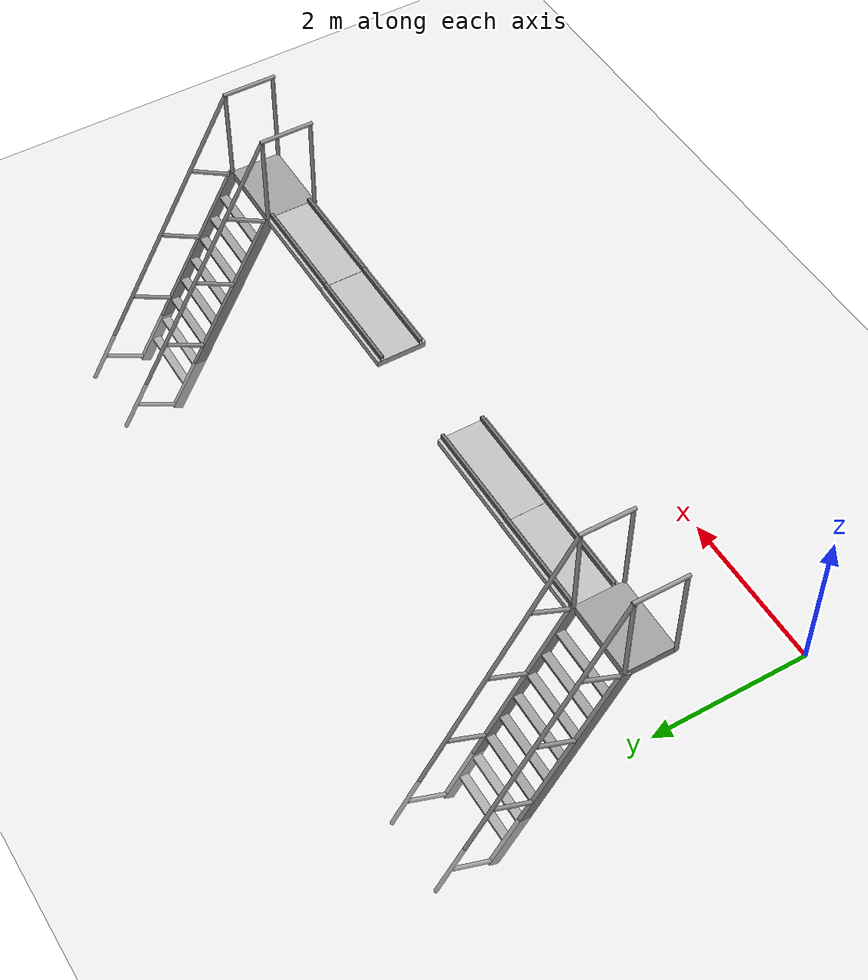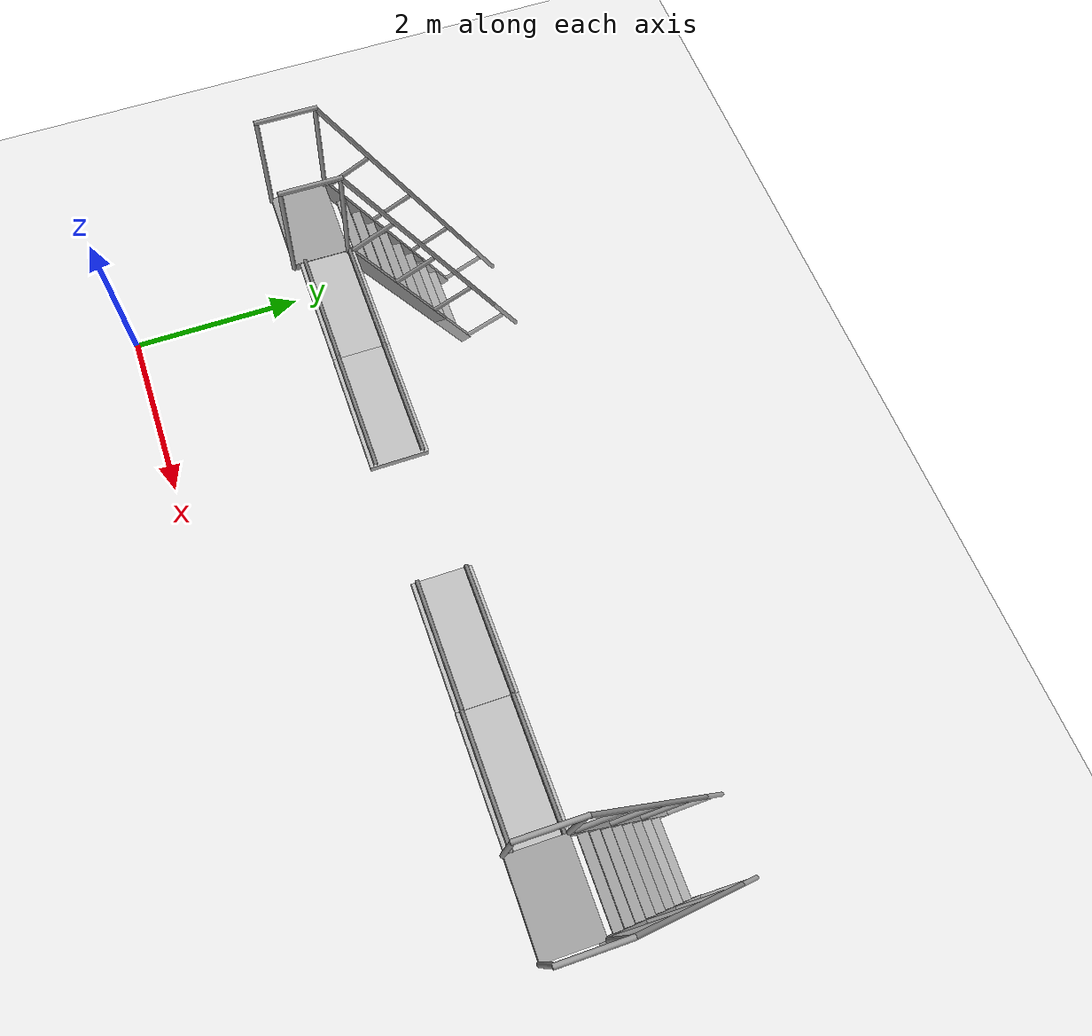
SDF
<sdf version="1.6">
 <world name="default">
  <model name="ground_plane">
   <static>1</static>
   <link name="link">
    <collision name="collision">
     <geometry><plane><normal>0 0 1</normal><size>100 100</size></plane></geometry>
     <surface>
      <contact><collide_bitmask>65535</collide_bitmask></contact>
      <friction><ode><mu>100</mu><mu2>50</mu2></ode></friction>
     </surface>
    </collision>
    <visual name="visual">
     <cast_shadows>0</cast_shadows>
     <geometry><plane><normal>0 0 1</normal><size>100 100</size></plane></geometry>
     <material>
      <script><uri>file://media/materials/scripts/gazebo.material</uri><name>Gazebo/Grey</name></script>
     </material>
    </visual>
   </link>
  </model>
  <model name="ladder_60deg_2rails_clone">
   <static>1</static>
   <link name="step0">
    <pose>0 0.15396 0.266667 0 -0 0</pose>
    <inertial>
     <mass>9.75482</mass>
     <inertia>
      <ixx>0.00957124</ixx>
      <iyy>0.65963</iyy>
      <izz>0.666842</izz>
      <ixy>0</ixy>
      <ixz>0</ixz>
      <iyz>0</iyz>
     </inertia>
    </inertial>
    <collision name="collision"><geometry><box><size>0.9 0.1016 0.0381</size></box></geometry></collision>
    <visual name="visual">
     <geometry><box><size>0.9 0.1016 0.0381</size></box></geometry>
     <material>
      <script><uri>file://media/materials/scripts/gazebo.material</uri><name>Gazebo/Grey</name></script>
     </material>
    </visual>
   </link>
   <link name="step1">
    <pose>0 0.30792 0.533333 0 -0 0</pose>
    <inertial>
     <mass>9.75482</mass>
     <inertia>
      <ixx>0.00957124</ixx>
      <iyy>0.65963</iyy>
      <izz>0.666842</izz>
      <ixy>0</ixy>
      <ixz>0</ixz>
      <iyz>0</iyz>
     </inertia>
    </inertial>
    <collision name="collision"><geometry><box><size>0.9 0.1016 0.0381</size></box></geometry></collision>
    <visual name="visual">
     <geometry><box><size>0.9 0.1016 0.0381</size></box></geometry>
     <material>
      <script><uri>file://media/materials/scripts/gazebo.material</uri><name>Gazebo/Grey</name></script>
     </material>
    </visual>
   </link>
   <link name="step2">
    <pose>0 0.46188 0.8 0 -0 0</pose>
    <inertial>
     <mass>9.75482</mass>
     <inertia>
      <ixx>0.00957124</ixx>
      <iyy>0.65963</iyy>
      <izz>0.666842</izz>
      <ixy>0</ixy>
      <ixz>0</ixz>
      <iyz>0</iyz>
     </inertia>
    </inertial>
    <collision name="collision"><geometry><box><size>0.9 0.1016 0.0381</size></box></geometry></collision>
    <visual name="visual">
     <geometry><box><size>0.9 0.1016 0.0381</size></box></geometry>
     <material>
      <script><uri>file://media/materials/scripts/gazebo.material</uri><name>Gazebo/Grey</name></script>
     </material>
    </visual>
   </link>
   <link name="step3">
    <pose>0 0.61584 1.06667 0 -0 0</pose>
    <inertial>
     <mass>9.75482</mass>
     <inertia>
      <ixx>0.00957124</ixx>
      <iyy>0.65963</iyy>
      <izz>0.666842</izz>
      <ixy>0</ixy>
      <ixz>0</ixz>
      <iyz>0</iyz>
     </inertia>
    </inertial>
    <collision name="collision"><geometry><box><size>0.9 0.1016 0.0381</size></box></geometry></collision>
    <visual name="visual">
     <geometry><box><size>0.9 0.1016 0.0381</size></box></geometry>
     <material>
      <script><uri>file://media/materials/scripts/gazebo.material</uri><name>Gazebo/Grey</name></script>
     </material>
    </visual>
   </link>
   <link name="step4">
    <pose>0 0.7698 1.33333 0 -0 0</pose>
    <inertial>
     <mass>9.75482</mass>
     <inertia>
      <ixx>0.00957124</ixx>
      <iyy>0.65963</iyy>
      <izz>0.666842</izz>
      <ixy>0</ixy>
      <ixz>0</ixz>
      <iyz>0</iyz>
     </inertia>
    </inertial>
    <collision name="collision"><geometry><box><size>0.9 0.1016 0.0381</size></box></geometry></collision>
    <visual name="visual">
     <geometry><box><size>0.9 0.1016 0.0381</size></box></geometry>
     <material>
      <script><uri>file://media/materials/scripts/gazebo.material</uri><name>Gazebo/Grey</name></script>
     </material>
    </visual>
   </link>
   <link name="step5">
    <pose>0 0.92376 1.6 0 -0 0</pose>
    <inertial>
     <mass>9.75482</mass>
     <inertia>
      <ixx>0.00957124</ixx>
      <iyy>0.65963</iyy>
      <izz>0.666842</izz>
      <ixy>0</ixy>
      <ixz>0</ixz>
      <iyz>0</iyz>
     </inertia>
    </inertial>
    <collision name="collision"><geometry><box><size>0.9 0.1016 0.0381</size></box></geometry></collision>
    <visual name="visual">
     <geometry><box><size>0.9 0.1016 0.0381</size></box></geometry>
     <material>
      <script><uri>file://media/materials/scripts/gazebo.material</uri><name>Gazebo/Grey</name></script>
     </material>
    </visual>
   </link>
   <link name="step6">
    <pose>0 1.07772 1.86667 0 -0 0</pose>
    <inertial>
     <mass>9.75482</mass>
     <inertia>
      <ixx>0.00957124</ixx>
      <iyy>0.65963</iyy>
      <izz>0.666842</izz>
      <ixy>0</ixy>
      <ixz>0</ixz>
      <iyz>0</iyz>
     </inertia>
    </inertial>
    <collision name="collision"><geometry><box><size>0.9 0.1016 0.0381</size></box></geometry></collision>
    <visual name="visual">
     <geometry><box><size>0.9 0.1016 0.0381</size></box></geometry>
     <material>
      <script><uri>file://media/materials/scripts/gazebo.material</uri><name>Gazebo/Grey</name></script>
     </material>
    </visual>
   </link>
   <link name="step7">
    <pose>0 1.23168 2.13333 0 -0 0</pose>
    <inertial>
     <mass>9.75482</mass>
     <inertia>
      <ixx>0.00957124</ixx>
      <iyy>0.65963</iyy>
      <izz>0.666842</izz>
      <ixy>0</ixy>
      <ixz>0</ixz>
      <iyz>0</iyz>
     </inertia>
    </inertial>
    <collision name="collision"><geometry><box><size>0.9 0.1016 0.0381</size></box></geometry></collision>
    <visual name="visual">
     <geometry><box><size>0.9 0.1016 0.0381</size></box></geometry>
     <material>
      <script><uri>file://media/materials/scripts/gazebo.material</uri><name>Gazebo/Grey</name></script>
     </material>
    </visual>
   </link>
   <link name="landing">
    <pose>0 1.68564 2.4 0 -0 0</pose>
    <inertial>
     <mass>57.6072</mass>
     <inertia><ixx>1.73518</ixx><iyy>3.89545</iyy><izz>5.6167</izz><ixy>0</ixy><ixz>0</ixz><iyz>0</iyz></inertia>
    </inertial>
    <collision name="collision"><geometry><box><size>0.9 0.6 0.1016</size></box></geometry></collision>
    <visual name="visual">
     <geometry><box><size>0.9 0.6 0.1016</size></box></geometry>
     <material>
      <script><uri>file://media/materials/scripts/gazebo.material</uri><name>Gazebo/Grey</name></script>
     </material>
    </visual>
   </link>
   <link name="left_side_wall">
    <pose>-0.45 0.69282 1.2 1.0472 -0 0</pose>
    <collision name="collision"><geometry><box><size>0.0508 2.85128 0.13</size></box></geometry></collision>
    <visual name="visual">
     <geometry><box><size>0.0508 2.85128 0.13</size></box></geometry>
     <material>
      <script><uri>file://media/materials/scripts/gazebo.material</uri><name>Gazebo/Grey</name></script>
     </material>
    </visual>
   </link>
   <link name="right_side_wall">
    <pose>0.45 0.69282 1.2 1.0472 -0 0</pose>
    <collision name="collision"><geometry><box><size>0.0508 2.85128 0.13</size></box></geometry></collision>
    <visual name="visual">
     <geometry><box><size>0.0508 2.85128 0.13</size></box></geometry>
     <material>
      <script><uri>file://media/materials/scripts/gazebo.material</uri><name>Gazebo/Grey</name></script>
     </material>
    </visual>
   </link>
   <link name="left_railing_long">
    <pose>-0.45 0.34282 1.80622 -0.523599 0 0</pose>
    <collision name="collision">
     <geometry><cylinder><radius>0.02413</radius><length>4.17128</length></cylinder></geometry>
    </collision>
    <visual name="visual">
     <geometry><cylinder><radius>0.02413</radius><length>4.17128</length></cylinder></geometry>
     <material>
      <script><uri>file://media/materials/scripts/gazebo.material</uri><name>Gazebo/Grey</name></script>
     </material>
    </visual>
   </link>
   <link name="left_railing_upright0">
    <pose>-0.45 -0.274963 0.15875 1.0472 -0 0</pose>
    <collision name="collision">
     <geometry><cylinder><radius>0.02413</radius><length>0.541218</length></cylinder></geometry>
    </collision>
    <visual name="visual">
     <geometry><cylinder><radius>0.02413</radius><length>0.541218</length></cylinder></geometry>
     <material>
      <script><uri>file://media/materials/scripts/gazebo.material</uri><name>Gazebo/Grey</name></script>
     </material>
    </visual>
   </link>
   <link name="left_railing_upright1">
    <pose>-0.45 0.186917 0.95875 1.0472 -0 0</pose>
    <collision name="collision">
     <geometry><cylinder><radius>0.02413</radius><length>0.541218</length></cylinder></geometry>
    </collision>
    <visual name="visual">
     <geometry><cylinder><radius>0.02413</radius><length>0.541218</length></cylinder></geometry>
     <material>
      <script><uri>file://media/materials/scripts/gazebo.material</uri><name>Gazebo/Grey</name></script>
     </material>
    </visual>
   </link>
   <link name="left_railing_upright2">
    <pose>-0.45 0.648797 1.75875 1.0472 -0 0</pose>
    <collision name="collision">
     <geometry><cylinder><radius>0.02413</radius><length>0.541218</length></cylinder></geometry>
    </collision>
    <visual name="visual">
     <geometry><cylinder><radius>0.02413</radius><length>0.541218</length></cylinder></geometry>
     <material>
      <script><uri>file://media/materials/scripts/gazebo.material</uri><name>Gazebo/Grey</name></script>
     </material>
    </visual>
   </link>
   <link name="left_railing_upright3">
    <pose>-0.45 1.11068 2.55875 1.0472 -0 0</pose>
    <collision name="collision">
     <geometry><cylinder><radius>0.02413</radius><length>0.541218</length></cylinder></geometry>
    </collision>
    <visual name="visual">
     <geometry><cylinder><radius>0.02413</radius><length>0.541218</length></cylinder></geometry>
     <material>
      <script><uri>file://media/materials/scripts/gazebo.material</uri><name>Gazebo/Grey</name></script>
     </material>
    </visual>
   </link>
   <link name="left_railing_landing_top">
    <pose>-0.45 1.68564 3.61244 1.5708 -0 0</pose>
    <collision name="collision">
     <geometry><cylinder><radius>0.02413</radius><length>0.64826</length></cylinder></geometry>
    </collision>
    <visual name="visual">
     <geometry><cylinder><radius>0.02413</radius><length>0.64826</length></cylinder></geometry>
     <material>
      <script><uri>file://media/materials/scripts/gazebo.material</uri><name>Gazebo/Grey</name></script>
     </material>
    </visual>
   </link>
   <link name="left_railing_landing_upright_0">
    <pose>-0.45 1.38564 3.00622 0 -0 0</pose>
    <collision name="collision">
     <geometry><cylinder><radius>0.02413</radius><length>1.21244</length></cylinder></geometry>
    </collision>
    <visual name="visual">
     <geometry><cylinder><radius>0.02413</radius><length>1.21244</length></cylinder></geometry>
     <material>
      <script><uri>file://media/materials/scripts/gazebo.material</uri><name>Gazebo/Grey</name></script>
     </material>
    </visual>
   </link>
   <link name="left_railing_landing_upright_1">
    <pose>-0.45 1.98564 3.00622 0 -0 0</pose>
    <collision name="collision">
     <geometry><cylinder><radius>0.02413</radius><length>1.21244</length></cylinder></geometry>
    </collision>
    <visual name="visual">
     <geometry><cylinder><radius>0.02413</radius><length>1.21244</length></cylinder></geometry>
     <material>
      <script><uri>file://media/materials/scripts/gazebo.material</uri><name>Gazebo/Grey</name></script>
     </material>
    </visual>
   </link>
   <link name="right_railing_long">
    <pose>0.45 0.34282 1.80622 -0.523599 0 0</pose>
    <collision name="collision">
     <geometry><cylinder><radius>0.02413</radius><length>4.17128</length></cylinder></geometry>
    </collision>
    <visual name="visual">
     <geometry><cylinder><radius>0.02413</radius><length>4.17128</length></cylinder></geometry>
     <material>
      <script><uri>file://media/materials/scripts/gazebo.material</uri><name>Gazebo/Grey</name></script>
     </material>
    </visual>
   </link>
   <link name="right_railing_upright0">
    <pose>0.45 -0.274963 0.15875 1.0472 -0 0</pose>
    <collision name="collision">
     <geometry><cylinder><radius>0.02413</radius><length>0.541218</length></cylinder></geometry>
    </collision>
    <visual name="visual">
     <geometry><cylinder><radius>0.02413</radius><length>0.541218</length></cylinder></geometry>
     <material>
      <script><uri>file://media/materials/scripts/gazebo.material</uri><name>Gazebo/Grey</name></script>
     </material>
    </visual>
   </link>
   <link name="right_railing_upright1">
    <pose>0.45 0.186917 0.95875 1.0472 -0 0</pose>
    <collision name="collision">
     <geometry><cylinder><radius>0.02413</radius><length>0.541218</length></cylinder></geometry>
    </collision>
    <visual name="visual">
     <geometry><cylinder><radius>0.02413</radius><length>0.541218</length></cylinder></geometry>
     <material>
      <script><uri>file://media/materials/scripts/gazebo.material</uri><name>Gazebo/Grey</name></script>
     </material>
    </visual>
   </link>
   <link name="right_railing_upright2">
    <pose>0.45 0.648797 1.75875 1.0472 -0 0</pose>
    <collision name="collision">
     <geometry><cylinder><radius>0.02413</radius><length>0.541218</length></cylinder></geometry>
    </collision>
    <visual name="visual">
     <geometry><cylinder><radius>0.02413</radius><length>0.541218</length></cylinder></geometry>
     <material>
      <script><uri>file://media/materials/scripts/gazebo.material</uri><name>Gazebo/Grey</name></script>
     </material>
    </visual>
   </link>
   <link name="right_railing_upright3">
    <pose>0.45 1.11068 2.55875 1.0472 -0 0</pose>
    <collision name="collision">
     <geometry><cylinder><radius>0.02413</radius><length>0.541218</length></cylinder></geometry>
    </collision>
    <visual name="visual">
     <geometry><cylinder><radius>0.02413</radius><length>0.541218</length></cylinder></geometry>
     <material>
      <script><uri>file://media/materials/scripts/gazebo.material</uri><name>Gazebo/Grey</name></script>
     </material>
    </visual>
   </link>
   <link name="right_railing_landing_top">
    <pose>0.45 1.68564 3.61244 1.5708 -0 0</pose>
    <collision name="collision">
     <geometry><cylinder><radius>0.02413</radius><length>0.64826</length></cylinder></geometry>
    </collision>
    <visual name="visual">
     <geometry><cylinder><radius>0.02413</radius><length>0.64826</length></cylinder></geometry>
     <material>
      <script><uri>file://media/materials/scripts/gazebo.material</uri><name>Gazebo/Grey</name></script>
     </material>
    </visual>
   </link>
   <link name="right_railing_landing_upright_0">
    <pose>0.45 1.38564 3.00622 0 -0 0</pose>
    <collision name="collision">
     <geometry><cylinder><radius>0.02413</radius><length>1.21244</length></cylinder></geometry>
    </collision>
    <visual name="visual">
     <geometry><cylinder><radius>0.02413</radius><length>1.21244</length></cylinder></geometry>
     <material>
      <script><uri>file://media/materials/scripts/gazebo.material</uri><name>Gazebo/Grey</name></script>
     </material>
    </visual>
   </link>
   <link name="right_railing_landing_upright_1">
    <pose>0.45 1.98564 3.00622 0 -0 0</pose>
    <collision name="collision">
     <geometry><cylinder><radius>0.02413</radius><length>1.21244</length></cylinder></geometry>
    </collision>
    <visual name="visual">
     <geometry><cylinder><radius>0.02413</radius><length>1.21244</length></cylinder></geometry>
     <material>
      <script><uri>file://media/materials/scripts/gazebo.material</uri><name>Gazebo/Grey</name></script>
     </material>
    </visual>
   </link>
   <pose>7.53336 4.00092 -0.605235 0 -0 3.13335</pose>
  </model>
  <model name="ladder_60deg_2rails_clone_clone">
   <static>1</static>
   <link name="step0">
    <pose>0 0.15396 0.266667 0 -0 0</pose>
    <inertial>
     <mass>9.75482</mass>
     <inertia>
      <ixx>0.00957124</ixx>
      <iyy>0.65963</iyy>
      <izz>0.666842</izz>
      <ixy>0</ixy>
      <ixz>0</ixz>
      <iyz>0</iyz>
     </inertia>
    </inertial>
    <collision name="collision"><geometry><box><size>0.9 0.1016 0.0381</size></box></geometry></collision>
    <visual name="visual">
     <geometry><box><size>0.9 0.1016 0.0381</size></box></geometry>
     <material>
      <script><uri>file://media/materials/scripts/gazebo.material</uri><name>Gazebo/Grey</name></script>
     </material>
    </visual>
   </link>
   <link name="step1">
    <pose>0 0.30792 0.533333 0 -0 0</pose>
    <inertial>
     <mass>9.75482</mass>
     <inertia>
      <ixx>0.00957124</ixx>
      <iyy>0.65963</iyy>
      <izz>0.666842</izz>
      <ixy>0</ixy>
      <ixz>0</ixz>
      <iyz>0</iyz>
     </inertia>
    </inertial>
    <collision name="collision"><geometry><box><size>0.9 0.1016 0.0381</size></box></geometry></collision>
    <visual name="visual">
     <geometry><box><size>0.9 0.1016 0.0381</size></box></geometry>
     <material>
      <script><uri>file://media/materials/scripts/gazebo.material</uri><name>Gazebo/Grey</name></script>
     </material>
    </visual>
   </link>
   <link name="step2">
    <pose>0 0.46188 0.8 0 -0 0</pose>
    <inertial>
     <mass>9.75482</mass>
     <inertia>
      <ixx>0.00957124</ixx>
      <iyy>0.65963</iyy>
      <izz>0.666842</izz>
      <ixy>0</ixy>
      <ixz>0</ixz>
      <iyz>0</iyz>
     </inertia>
    </inertial>
    <collision name="collision"><geometry><box><size>0.9 0.1016 0.0381</size></box></geometry></collision>
    <visual name="visual">
     <geometry><box><size>0.9 0.1016 0.0381</size></box></geometry>
     <material>
      <script><uri>file://media/materials/scripts/gazebo.material</uri><name>Gazebo/Grey</name></script>
     </material>
    </visual>
   </link>
   <link name="step3">
    <pose>0 0.61584 1.06667 0 -0 0</pose>
    <inertial>
     <mass>9.75482</mass>
     <inertia>
      <ixx>0.00957124</ixx>
      <iyy>0.65963</iyy>
      <izz>0.666842</izz>
      <ixy>0</ixy>
      <ixz>0</ixz>
      <iyz>0</iyz>
     </inertia>
    </inertial>
    <collision name="collision"><geometry><box><size>0.9 0.1016 0.0381</size></box></geometry></collision>
    <visual name="visual">
     <geometry><box><size>0.9 0.1016 0.0381</size></box></geometry>
     <material>
      <script><uri>file://media/materials/scripts/gazebo.material</uri><name>Gazebo/Grey</name></script>
     </material>
    </visual>
   </link>
   <link name="step4">
    <pose>0 0.7698 1.33333 0 -0 0</pose>
    <inertial>
     <mass>9.75482</mass>
     <inertia>
      <ixx>0.00957124</ixx>
      <iyy>0.65963</iyy>
      <izz>0.666842</izz>
      <ixy>0</ixy>
      <ixz>0</ixz>
      <iyz>0</iyz>
     </inertia>
    </inertial>
    <collision name="collision"><geometry><box><size>0.9 0.1016 0.0381</size></box></geometry></collision>
    <visual name="visual">
     <geometry><box><size>0.9 0.1016 0.0381</size></box></geometry>
     <material>
      <script><uri>file://media/materials/scripts/gazebo.material</uri><name>Gazebo/Grey</name></script>
     </material>
    </visual>
   </link>
   <link name="step5">
    <pose>0 0.92376 1.6 0 -0 0</pose>
    <inertial>
     <mass>9.75482</mass>
     <inertia>
      <ixx>0.00957124</ixx>
      <iyy>0.65963</iyy>
      <izz>0.666842</izz>
      <ixy>0</ixy>
      <ixz>0</ixz>
      <iyz>0</iyz>
     </inertia>
    </inertial>
    <collision name="collision"><geometry><box><size>0.9 0.1016 0.0381</size></box></geometry></collision>
    <visual name="visual">
     <geometry><box><size>0.9 0.1016 0.0381</size></box></geometry>
     <material>
      <script><uri>file://media/materials/scripts/gazebo.material</uri><name>Gazebo/Grey</name></script>
     </material>
    </visual>
   </link>
   <link name="step6">
    <pose>0 1.07772 1.86667 0 -0 0</pose>
    <inertial>
     <mass>9.75482</mass>
     <inertia>
      <ixx>0.00957124</ixx>
      <iyy>0.65963</iyy>
      <izz>0.666842</izz>
      <ixy>0</ixy>
      <ixz>0</ixz>
      <iyz>0</iyz>
     </inertia>
    </inertial>
    <collision name="collision"><geometry><box><size>0.9 0.1016 0.0381</size></box></geometry></collision>
    <visual name="visual">
     <geometry><box><size>0.9 0.1016 0.0381</size></box></geometry>
     <material>
      <script><uri>file://media/materials/scripts/gazebo.material</uri><name>Gazebo/Grey</name></script>
     </material>
    </visual>
   </link>
   <link name="step7">
    <pose>0 1.23168 2.13333 0 -0 0</pose>
    <inertial>
     <mass>9.75482</mass>
     <inertia>
      <ixx>0.00957124</ixx>
      <iyy>0.65963</iyy>
      <izz>0.666842</izz>
      <ixy>0</ixy>
      <ixz>0</ixz>
      <iyz>0</iyz>
     </inertia>
    </inertial>
    <collision name="collision"><geometry><box><size>0.9 0.1016 0.0381</size></box></geometry></collision>
    <visual name="visual">
     <geometry><box><size>0.9 0.1016 0.0381</size></box></geometry>
     <material>
      <script><uri>file://media/materials/scripts/gazebo.material</uri><name>Gazebo/Grey</name></script>
     </material>
    </visual>
   </link>
   <link name="landing">
    <pose>0 1.68564 2.4 0 -0 0</pose>
    <inertial>
     <mass>57.6072</mass>
     <inertia><ixx>1.73518</ixx><iyy>3.89545</iyy><izz>5.6167</izz><ixy>0</ixy><ixz>0</ixz><iyz>0</iyz></inertia>
    </inertial>
    <collision name="collision"><geometry><box><size>0.9 0.6 0.1016</size></box></geometry></collision>
    <visual name="visual">
     <geometry><box><size>0.9 0.6 0.1016</size></box></geometry>
     <material>
      <script><uri>file://media/materials/scripts/gazebo.material</uri><name>Gazebo/Grey</name></script>
     </material>
    </visual>
   </link>
   <link name="left_side_wall">
    <pose>-0.45 0.69282 1.2 1.0472 -0 0</pose>
    <collision name="collision"><geometry><box><size>0.0508 2.85128 0.13</size></box></geometry></collision>
    <visual name="visual">
     <geometry><box><size>0.0508 2.85128 0.13</size></box></geometry>
     <material>
      <script><uri>file://media/materials/scripts/gazebo.material</uri><name>Gazebo/Grey</name></script>
     </material>
    </visual>
   </link>
   <link name="right_side_wall">
    <pose>0.45 0.69282 1.2 1.0472 -0 0</pose>
    <collision name="collision"><geometry><box><size>0.0508 2.85128 0.13</size></box></geometry></collision>
    <visual name="visual">
     <geometry><box><size>0.0508 2.85128 0.13</size></box></geometry>
     <material>
      <script><uri>file://media/materials/scripts/gazebo.material</uri><name>Gazebo/Grey</name></script>
     </material>
    </visual>
   </link>
   <link name="left_railing_long">
    <pose>-0.45 0.34282 1.80622 -0.523599 0 0</pose>
    <collision name="collision">
     <geometry><cylinder><radius>0.02413</radius><length>4.17128</length></cylinder></geometry>
    </collision>
    <visual name="visual">
     <geometry><cylinder><radius>0.02413</radius><length>4.17128</length></cylinder></geometry>
     <material>
      <script><uri>file://media/materials/scripts/gazebo.material</uri><name>Gazebo/Grey</name></script>
     </material>
    </visual>
   </link>
   <link name="left_railing_upright0">
    <pose>-0.45 -0.274963 0.15875 1.0472 -0 0</pose>
    <collision name="collision">
     <geometry><cylinder><radius>0.02413</radius><length>0.541218</length></cylinder></geometry>
    </collision>
    <visual name="visual">
     <geometry><cylinder><radius>0.02413</radius><length>0.541218</length></cylinder></geometry>
     <material>
      <script><uri>file://media/materials/scripts/gazebo.material</uri><name>Gazebo/Grey</name></script>
     </material>
    </visual>
   </link>
   <link name="left_railing_upright1">
    <pose>-0.45 0.186917 0.95875 1.0472 -0 0</pose>
    <collision name="collision">
     <geometry><cylinder><radius>0.02413</radius><length>0.541218</length></cylinder></geometry>
    </collision>
    <visual name="visual">
     <geometry><cylinder><radius>0.02413</radius><length>0.541218</length></cylinder></geometry>
     <material>
      <script><uri>file://media/materials/scripts/gazebo.material</uri><name>Gazebo/Grey</name></script>
     </material>
    </visual>
   </link>
   <link name="left_railing_upright2">
    <pose>-0.45 0.648797 1.75875 1.0472 -0 0</pose>
    <collision name="collision">
     <geometry><cylinder><radius>0.02413</radius><length>0.541218</length></cylinder></geometry>
    </collision>
    <visual name="visual">
     <geometry><cylinder><radius>0.02413</radius><length>0.541218</length></cylinder></geometry>
     <material>
      <script><uri>file://media/materials/scripts/gazebo.material</uri><name>Gazebo/Grey</name></script>
     </material>
    </visual>
   </link>
   <link name="left_railing_upright3">
    <pose>-0.45 1.11068 2.55875 1.0472 -0 0</pose>
    <collision name="collision">
     <geometry><cylinder><radius>0.02413</radius><length>0.541218</length></cylinder></geometry>
    </collision>
    <visual name="visual">
     <geometry><cylinder><radius>0.02413</radius><length>0.541218</length></cylinder></geometry>
     <material>
      <script><uri>file://media/materials/scripts/gazebo.material</uri><name>Gazebo/Grey</name></script>
     </material>
    </visual>
   </link>
   <link name="left_railing_landing_top">
    <pose>-0.45 1.68564 3.61244 1.5708 -0 0</pose>
    <collision name="collision">
     <geometry><cylinder><radius>0.02413</radius><length>0.64826</length></cylinder></geometry>
    </collision>
    <visual name="visual">
     <geometry><cylinder><radius>0.02413</radius><length>0.64826</length></cylinder></geometry>
     <material>
      <script><uri>file://media/materials/scripts/gazebo.material</uri><name>Gazebo/Grey</name></script>
     </material>
    </visual>
   </link>
   <link name="left_railing_landing_upright_0">
    <pose>-0.45 1.38564 3.00622 0 -0 0</pose>
    <collision name="collision">
     <geometry><cylinder><radius>0.02413</radius><length>1.21244</length></cylinder></geometry>
    </collision>
    <visual name="visual">
     <geometry><cylinder><radius>0.02413</radius><length>1.21244</length></cylinder></geometry>
     <material>
      <script><uri>file://media/materials/scripts/gazebo.material</uri><name>Gazebo/Grey</name></script>
     </material>
    </visual>
   </link>
   <link name="left_railing_landing_upright_1">
    <pose>-0.45 1.98564 3.00622 0 -0 0</pose>
    <collision name="collision">
     <geometry><cylinder><radius>0.02413</radius><length>1.21244</length></cylinder></geometry>
    </collision>
    <visual name="visual">
     <geometry><cylinder><radius>0.02413</radius><length>1.21244</length></cylinder></geometry>
     <material>
      <script><uri>file://media/materials/scripts/gazebo.material</uri><name>Gazebo/Grey</name></script>
     </material>
    </visual>
   </link>
   <link name="right_railing_long">
    <pose>0.45 0.34282 1.80622 -0.523599 0 0</pose>
    <collision name="collision">
     <geometry><cylinder><radius>0.02413</radius><length>4.17128</length></cylinder></geometry>
    </collision>
    <visual name="visual">
     <geometry><cylinder><radius>0.02413</radius><length>4.17128</length></cylinder></geometry>
     <material>
      <script><uri>file://media/materials/scripts/gazebo.material</uri><name>Gazebo/Grey</name></script>
     </material>
    </visual>
   </link>
   <link name="right_railing_upright0">
    <pose>0.45 -0.274963 0.15875 1.0472 -0 0</pose>
    <collision name="collision">
     <geometry><cylinder><radius>0.02413</radius><length>0.541218</length></cylinder></geometry>
    </collision>
    <visual name="visual">
     <geometry><cylinder><radius>0.02413</radius><length>0.541218</length></cylinder></geometry>
     <material>
      <script><uri>file://media/materials/scripts/gazebo.material</uri><name>Gazebo/Grey</name></script>
     </material>
    </visual>
   </link>
   <link name="right_railing_upright1">
    <pose>0.45 0.186917 0.95875 1.0472 -0 0</pose>
    <collision name="collision">
     <geometry><cylinder><radius>0.02413</radius><length>0.541218</length></cylinder></geometry>
    </collision>
    <visual name="visual">
     <geometry><cylinder><radius>0.02413</radius><length>0.541218</length></cylinder></geometry>
     <material>
      <script><uri>file://media/materials/scripts/gazebo.material</uri><name>Gazebo/Grey</name></script>
     </material>
    </visual>
   </link>
   <link name="right_railing_upright2">
    <pose>0.45 0.648797 1.75875 1.0472 -0 0</pose>
    <collision name="collision">
     <geometry><cylinder><radius>0.02413</radius><length>0.541218</length></cylinder></geometry>
    </collision>
    <visual name="visual">
     <geometry><cylinder><radius>0.02413</radius><length>0.541218</length></cylinder></geometry>
     <material>
      <script><uri>file://media/materials/scripts/gazebo.material</uri><name>Gazebo/Grey</name></script>
     </material>
    </visual>
   </link>
   <link name="right_railing_upright3">
    <pose>0.45 1.11068 2.55875 1.0472 -0 0</pose>
    <collision name="collision">
     <geometry><cylinder><radius>0.02413</radius><length>0.541218</length></cylinder></geometry>
    </collision>
    <visual name="visual">
     <geometry><cylinder><radius>0.02413</radius><length>0.541218</length></cylinder></geometry>
     <material>
      <script><uri>file://media/materials/scripts/gazebo.material</uri><name>Gazebo/Grey</name></script>
     </material>
    </visual>
   </link>
   <link name="right_railing_landing_top">
    <pose>0.45 1.68564 3.61244 1.5708 -0 0</pose>
    <collision name="collision">
     <geometry><cylinder><radius>0.02413</radius><length>0.64826</length></cylinder></geometry>
    </collision>
    <visual name="visual">
     <geometry><cylinder><radius>0.02413</radius><length>0.64826</length></cylinder></geometry>
     <material>
      <script><uri>file://media/materials/scripts/gazebo.material</uri><name>Gazebo/Grey</name></script>
     </material>
    </visual>
   </link>
   <link name="right_railing_landing_upright_0">
    <pose>0.45 1.38564 3.00622 0 -0 0</pose>
    <collision name="collision">
     <geometry><cylinder><radius>0.02413</radius><length>1.21244</length></cylinder></geometry>
    </collision>
    <visual name="visual">
     <geometry><cylinder><radius>0.02413</radius><length>1.21244</length></cylinder></geometry>
     <material>
      <script><uri>file://media/materials/scripts/gazebo.material</uri><name>Gazebo/Grey</name></script>
     </material>
    </visual>
   </link>
   <link name="right_railing_landing_upright_1">
    <pose>0.45 1.98564 3.00622 0 -0 0</pose>
    <collision name="collision">
     <geometry><cylinder><radius>0.02413</radius><length>1.21244</length></cylinder></geometry>
    </collision>
    <visual name="visual">
     <geometry><cylinder><radius>0.02413</radius><length>1.21244</length></cylinder></geometry>
     <material>
      <script><uri>file://media/materials/scripts/gazebo.material</uri><name>Gazebo/Grey</name></script>
     </material>
    </visual>
   </link>
   <pose>0.353095 3.95701 -0.60362 0 -0 3.13335</pose>
  </model>
  <model name="frc2016_moat_clone_1">
   <static>1</static>
   <link name="link">
    <inertial>
     <mass>10</mass>
     <pose>0 0 0.06738 0 -0 0</pose>
     <inertia><ixx>0.312195</ixx><ixy>0</ixy><ixz>0</ixz><iyy>1.35927</iyy><iyz>0</iyz><izz>1.64109</izz></inertia>
    </inertial>
    <visual name="platform">
     <pose>0 0 0.0381 0 -0 0</pose>
     <geometry><box><size>1.27 0.5969 0.0762</size></box></geometry>
    </visual>
    <collision name="platform">
     <pose>0 0 0.0381 0 -0 0</pose>
     <geometry><box><size>1.27 0.5969 0.0762</size></box></geometry>
    </collision>
    <visual name="tube1_side1">
     <pose>0 -0.25876 0.10301 0 -0 0</pose>
     <geometry><box><size>1.27 0.003175 0.0635</size></box></geometry>
     <material><ambient>0.46 0.46 0.46 1</ambient><diffuse>0.46 0.46 0.46 1</diffuse></material>
    </visual>
    <collision name="tube1_side1">
     <pose>0 -0.25876 0.10301 0 -0 0</pose>
     <geometry><box><size>1.27 0.003175 0.0635</size></box></geometry>
    </collision>
    <visual name="tube1_side2">
     <pose>0 -0.22384 0.10301 0 -0 0</pose>
     <geometry><box><size>1.27 0.003175 0.0635</size></box></geometry>
     <material><ambient>0.46 0.46 0.46 1</ambient><diffuse>0.46 0.46 0.46 1</diffuse></material>
    </visual>
    <collision name="tube1_side2">
     <pose>0 -0.22384 0.10301 0 -0 0</pose>
     <geometry><box><size>1.27 0.003175 0.0635</size></box></geometry>
    </collision>
    <visual name="tube1_top">
     <pose>0 -0.2413 0.13317 0 -0 0</pose>
     <geometry><box><size>1.27 0.0381 0.003175</size></box></geometry>
     <material><ambient>0.46 0.46 0.46 1</ambient><diffuse>0.46 0.46 0.46 1</diffuse></material>
    </visual>
    <collision name="tube1_top">
     <pose>0 -0.2413 0.13317 0 -0 0</pose>
     <geometry><box><size>1.27 0.0381 0.003175</size></box></geometry>
    </collision>
    <visual name="tube2_side1">
     <pose>0 0.22384 0.10301 0 -0 0</pose>
     <geometry><box><size>1.27 0.003175 0.0635</size></box></geometry>
     <material><ambient>0.46 0.46 0.46 1</ambient><diffuse>0.46 0.46 0.46 1</diffuse></material>
    </visual>
    <collision name="tube2_side1">
     <pose>0 0.22384 0.10301 0 -0 0</pose>
     <geometry><box><size>1.27 0.003175 0.0635</size></box></geometry>
    </collision>
    <visual name="tube2_side2">
     <pose>0 0.25876 0.10301 0 -0 0</pose>
     <geometry><box><size>1.27 0.003175 0.0635</size></box></geometry>
     <material><ambient>0.46 0.46 0.46 1</ambient><diffuse>0.46 0.46 0.46 1</diffuse></material>
    </visual>
    <collision name="tube2_side2">
     <pose>0 0.25876 0.10301 0 -0 0</pose>
     <geometry><box><size>1.27 0.003175 0.0635</size></box></geometry>
    </collision>
    <visual name="tube2_top">
     <pose>0 0.2413 0.13317 0 -0 0</pose>
     <geometry><box><size>1.27 0.0381 0.003175</size></box></geometry>
     <material><ambient>0.46 0.46 0.46 1</ambient><diffuse>0.46 0.46 0.46 1</diffuse></material>
    </visual>
    <collision name="tube2_top">
     <pose>0 0.2413 0.13317 0 -0 0</pose>
     <geometry><box><size>1.27 0.0381 0.003175</size></box></geometry>
    </collision>
   </link>
   <pose>1.4215 2.33471 1.76192 0 -0 0</pose>
  </model>
  <model name="frc2016_moat_clone_1_clone">
   <static>1</static>
   <link name="link">
    <inertial>
     <mass>10</mass>
     <pose>0 0 0.06738 0 -0 0</pose>
     <inertia><ixx>0.312195</ixx><ixy>0</ixy><ixz>0</ixz><iyy>1.35927</iyy><iyz>0</iyz><izz>1.64109</izz></inertia>
    </inertial>
    <visual name="platform">
     <pose>0 0 0.0381 0 -0 0</pose>
     <geometry><box><size>1.27 0.5969 0.0762</size></box></geometry>
    </visual>
    <collision name="platform">
     <pose>0 0 0.0381 0 -0 0</pose>
     <geometry><box><size>1.27 0.5969 0.0762</size></box></geometry>
    </collision>
    <visual name="tube1_side1">
     <pose>0 -0.25876 0.10301 0 -0 0</pose>
     <geometry><box><size>1.27 0.003175 0.0635</size></box></geometry>
     <material><ambient>0.46 0.46 0.46 1</ambient><diffuse>0.46 0.46 0.46 1</diffuse></material>
    </visual>
    <collision name="tube1_side1">
     <pose>0 -0.25876 0.10301 0 -0 0</pose>
     <geometry><box><size>1.27 0.003175 0.0635</size></box></geometry>
    </collision>
    <visual name="tube1_side2">
     <pose>0 -0.22384 0.10301 0 -0 0</pose>
     <geometry><box><size>1.27 0.003175 0.0635</size></box></geometry>
     <material><ambient>0.46 0.46 0.46 1</ambient><diffuse>0.46 0.46 0.46 1</diffuse></material>
    </visual>
    <collision name="tube1_side2">
     <pose>0 -0.22384 0.10301 0 -0 0</pose>
     <geometry><box><size>1.27 0.003175 0.0635</size></box></geometry>
    </collision>
    <visual name="tube1_top">
     <pose>0 -0.2413 0.13317 0 -0 0</pose>
     <geometry><box><size>1.27 0.0381 0.003175</size></box></geometry>
     <material><ambient>0.46 0.46 0.46 1</ambient><diffuse>0.46 0.46 0.46 1</diffuse></material>
    </visual>
    <collision name="tube1_top">
     <pose>0 -0.2413 0.13317 0 -0 0</pose>
     <geometry><box><size>1.27 0.0381 0.003175</size></box></geometry>
    </collision>
    <visual name="tube2_side1">
     <pose>0 0.22384 0.10301 0 -0 0</pose>
     <geometry><box><size>1.27 0.003175 0.0635</size></box></geometry>
     <material><ambient>0.46 0.46 0.46 1</ambient><diffuse>0.46 0.46 0.46 1</diffuse></material>
    </visual>
    <collision name="tube2_side1">
     <pose>0 0.22384 0.10301 0 -0 0</pose>
     <geometry><box><size>1.27 0.003175 0.0635</size></box></geometry>
    </collision>
    <visual name="tube2_side2">
     <pose>0 0.25876 0.10301 0 -0 0</pose>
     <geometry><box><size>1.27 0.003175 0.0635</size></box></geometry>
     <material><ambient>0.46 0.46 0.46 1</ambient><diffuse>0.46 0.46 0.46 1</diffuse></material>
    </visual>
    <collision name="tube2_side2">
     <pose>0 0.25876 0.10301 0 -0 0</pose>
     <geometry><box><size>1.27 0.003175 0.0635</size></box></geometry>
    </collision>
    <visual name="tube2_top">
     <pose>0 0.2413 0.13317 0 -0 0</pose>
     <geometry><box><size>1.27 0.0381 0.003175</size></box></geometry>
     <material><ambient>0.46 0.46 0.46 1</ambient><diffuse>0.46 0.46 0.46 1</diffuse></material>
    </visual>
    <collision name="tube2_top">
     <pose>0 0.2413 0.13317 0 -0 0</pose>
     <geometry><box><size>1.27 0.0381 0.003175</size></box></geometry>
    </collision>
   </link>
   <pose>2.64552 2.33311 1.76302 0 -0 0</pose>
  </model>
  <model name="frc2016_moat_clone_1_clone_1">
   <static>1</static>
   <link name="link">
    <inertial>
     <mass>10</mass>
     <pose>0 0 0.06738 0 -0 0</pose>
     <inertia><ixx>0.312195</ixx><ixy>0</ixy><ixz>0</ixz><iyy>1.35927</iyy><iyz>0</iyz><izz>1.64109</izz></inertia>
    </inertial>
    <visual name="platform">
     <pose>0 0 0.0381 0 -0 0</pose>
     <geometry><box><size>1.27 0.5969 0.0762</size></box></geometry>
    </visual>
    <collision name="platform">
     <pose>0 0 0.0381 0 -0 0</pose>
     <geometry><box><size>1.27 0.5969 0.0762</size></box></geometry>
    </collision>
    <visual name="tube1_side1">
     <pose>0 -0.25876 0.10301 0 -0 0</pose>
     <geometry><box><size>1.27 0.003175 0.0635</size></box></geometry>
     <material><ambient>0.46 0.46 0.46 1</ambient><diffuse>0.46 0.46 0.46 1</diffuse></material>
    </visual>
    <collision name="tube1_side1">
     <pose>0 -0.25876 0.10301 0 -0 0</pose>
     <geometry><box><size>1.27 0.003175 0.0635</size></box></geometry>
    </collision>
    <visual name="tube1_side2">
     <pose>0 -0.22384 0.10301 0 -0 0</pose>
     <geometry><box><size>1.27 0.003175 0.0635</size></box></geometry>
     <material><ambient>0.46 0.46 0.46 1</ambient><diffuse>0.46 0.46 0.46 1</diffuse></material>
    </visual>
    <collision name="tube1_side2">
     <pose>0 -0.22384 0.10301 0 -0 0</pose>
     <geometry><box><size>1.27 0.003175 0.0635</size></box></geometry>
    </collision>
    <visual name="tube1_top">
     <pose>0 -0.2413 0.13317 0 -0 0</pose>
     <geometry><box><size>1.27 0.0381 0.003175</size></box></geometry>
     <material><ambient>0.46 0.46 0.46 1</ambient><diffuse>0.46 0.46 0.46 1</diffuse></material>
    </visual>
    <collision name="tube1_top">
     <pose>0 -0.2413 0.13317 0 -0 0</pose>
     <geometry><box><size>1.27 0.0381 0.003175</size></box></geometry>
    </collision>
    <visual name="tube2_side1">
     <pose>0 0.22384 0.10301 0 -0 0</pose>
     <geometry><box><size>1.27 0.003175 0.0635</size></box></geometry>
     <material><ambient>0.46 0.46 0.46 1</ambient><diffuse>0.46 0.46 0.46 1</diffuse></material>
    </visual>
    <collision name="tube2_side1">
     <pose>0 0.22384 0.10301 0 -0 0</pose>
     <geometry><box><size>1.27 0.003175 0.0635</size></box></geometry>
    </collision>
    <visual name="tube2_side2">
     <pose>0 0.25876 0.10301 0 -0 0</pose>
     <geometry><box><size>1.27 0.003175 0.0635</size></box></geometry>
     <material><ambient>0.46 0.46 0.46 1</ambient><diffuse>0.46 0.46 0.46 1</diffuse></material>
    </visual>
    <collision name="tube2_side2">
     <pose>0 0.25876 0.10301 0 -0 0</pose>
     <geometry><box><size>1.27 0.003175 0.0635</size></box></geometry>
    </collision>
    <visual name="tube2_top">
     <pose>0 0.2413 0.13317 0 -0 0</pose>
     <geometry><box><size>1.27 0.0381 0.003175</size></box></geometry>
     <material><ambient>0.46 0.46 0.46 1</ambient><diffuse>0.46 0.46 0.46 1</diffuse></material>
    </visual>
    <collision name="tube2_top">
     <pose>0 0.2413 0.13317 0 -0 0</pose>
     <geometry><box><size>1.27 0.0381 0.003175</size></box></geometry>
    </collision>
   </link>
   <pose>5.16578 2.33435 1.76626 0 -0 0</pose>
  </model>
  <model name="frc2016_moat_clone_1_clone_2">
   <static>1</static>
   <link name="link">
    <inertial>
     <mass>10</mass>
     <pose>0 0 0.06738 0 -0 0</pose>
     <inertia><ixx>0.312195</ixx><ixy>0</ixy><ixz>0</ixz><iyy>1.35927</iyy><iyz>0</iyz><izz>1.64109</izz></inertia>
    </inertial>
    <visual name="platform">
     <pose>0 0 0.0381 0 -0 0</pose>
     <geometry><box><size>1.27 0.5969 0.0762</size></box></geometry>
    </visual>
    <collision name="platform">
     <pose>0 0 0.0381 0 -0 0</pose>
     <geometry><box><size>1.27 0.5969 0.0762</size></box></geometry>
    </collision>
    <visual name="tube1_side1">
     <pose>0 -0.25876 0.10301 0 -0 0</pose>
     <geometry><box><size>1.27 0.003175 0.0635</size></box></geometry>
     <material><ambient>0.46 0.46 0.46 1</ambient><diffuse>0.46 0.46 0.46 1</diffuse></material>
    </visual>
    <collision name="tube1_side1">
     <pose>0 -0.25876 0.10301 0 -0 0</pose>
     <geometry><box><size>1.27 0.003175 0.0635</size></box></geometry>
    </collision>
    <visual name="tube1_side2">
     <pose>0 -0.22384 0.10301 0 -0 0</pose>
     <geometry><box><size>1.27 0.003175 0.0635</size></box></geometry>
     <material><ambient>0.46 0.46 0.46 1</ambient><diffuse>0.46 0.46 0.46 1</diffuse></material>
    </visual>
    <collision name="tube1_side2">
     <pose>0 -0.22384 0.10301 0 -0 0</pose>
     <geometry><box><size>1.27 0.003175 0.0635</size></box></geometry>
    </collision>
    <visual name="tube1_top">
     <pose>0 -0.2413 0.13317 0 -0 0</pose>
     <geometry><box><size>1.27 0.0381 0.003175</size></box></geometry>
     <material><ambient>0.46 0.46 0.46 1</ambient><diffuse>0.46 0.46 0.46 1</diffuse></material>
    </visual>
    <collision name="tube1_top">
     <pose>0 -0.2413 0.13317 0 -0 0</pose>
     <geometry><box><size>1.27 0.0381 0.003175</size></box></geometry>
    </collision>
    <visual name="tube2_side1">
     <pose>0 0.22384 0.10301 0 -0 0</pose>
     <geometry><box><size>1.27 0.003175 0.0635</size></box></geometry>
     <material><ambient>0.46 0.46 0.46 1</ambient><diffuse>0.46 0.46 0.46 1</diffuse></material>
    </visual>
    <collision name="tube2_side1">
     <pose>0 0.22384 0.10301 0 -0 0</pose>
     <geometry><box><size>1.27 0.003175 0.0635</size></box></geometry>
    </collision>
    <visual name="tube2_side2">
     <pose>0 0.25876 0.10301 0 -0 0</pose>
     <geometry><box><size>1.27 0.003175 0.0635</size></box></geometry>
     <material><ambient>0.46 0.46 0.46 1</ambient><diffuse>0.46 0.46 0.46 1</diffuse></material>
    </visual>
    <collision name="tube2_side2">
     <pose>0 0.25876 0.10301 0 -0 0</pose>
     <geometry><box><size>1.27 0.003175 0.0635</size></box></geometry>
    </collision>
    <visual name="tube2_top">
     <pose>0 0.2413 0.13317 0 -0 0</pose>
     <geometry><box><size>1.27 0.0381 0.003175</size></box></geometry>
     <material><ambient>0.46 0.46 0.46 1</ambient><diffuse>0.46 0.46 0.46 1</diffuse></material>
    </visual>
    <collision name="tube2_top">
     <pose>0 0.2413 0.13317 0 -0 0</pose>
     <geometry><box><size>1.27 0.0381 0.003175</size></box></geometry>
    </collision>
   </link>
   <pose>6.43869 2.33056 1.7668 0 -0 0</pose>
  </model>
 </world>
</sdf>
